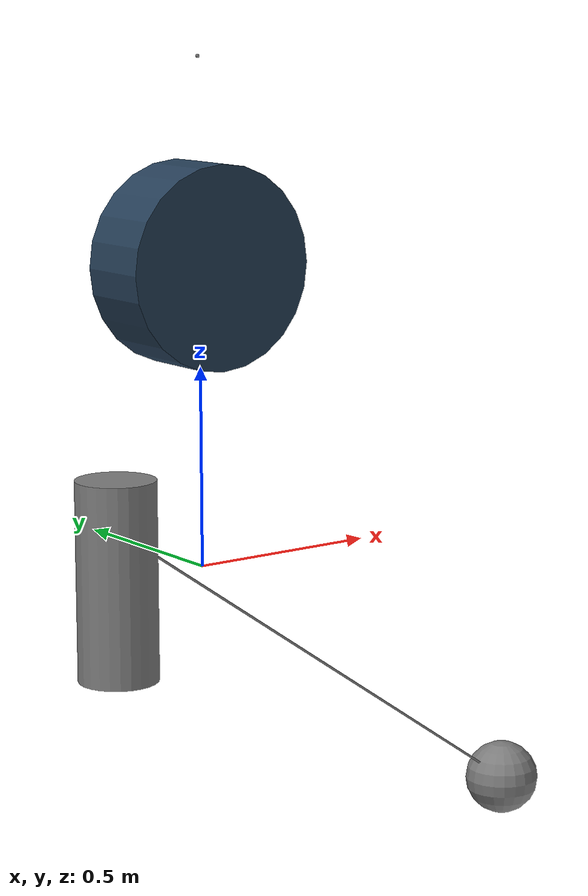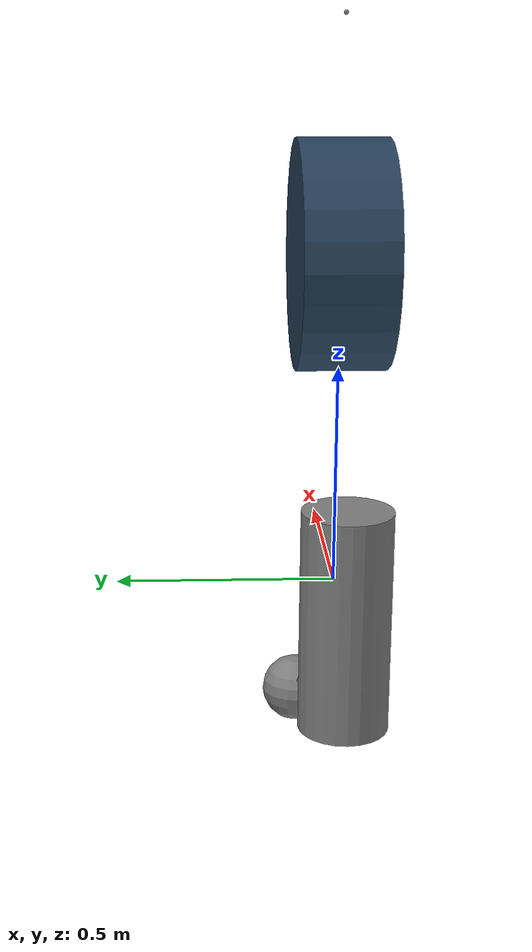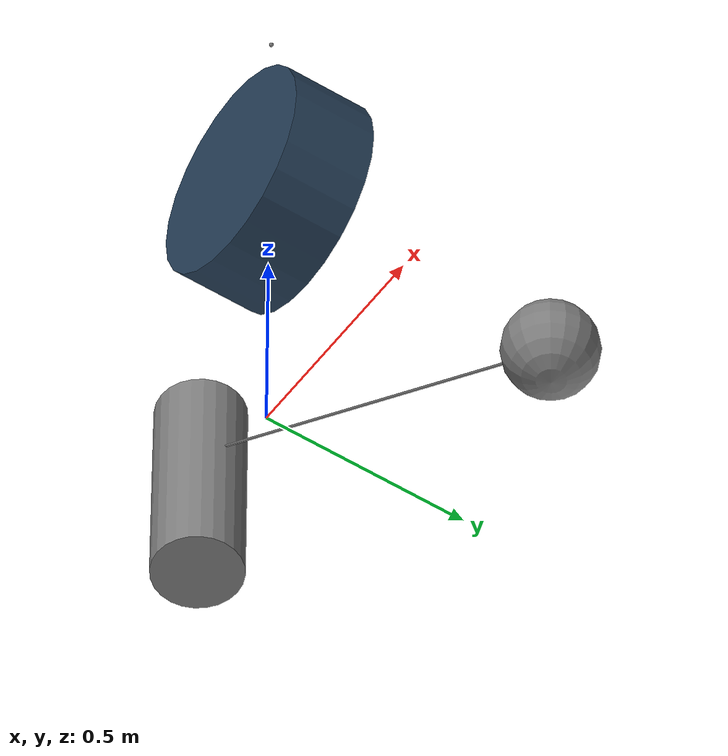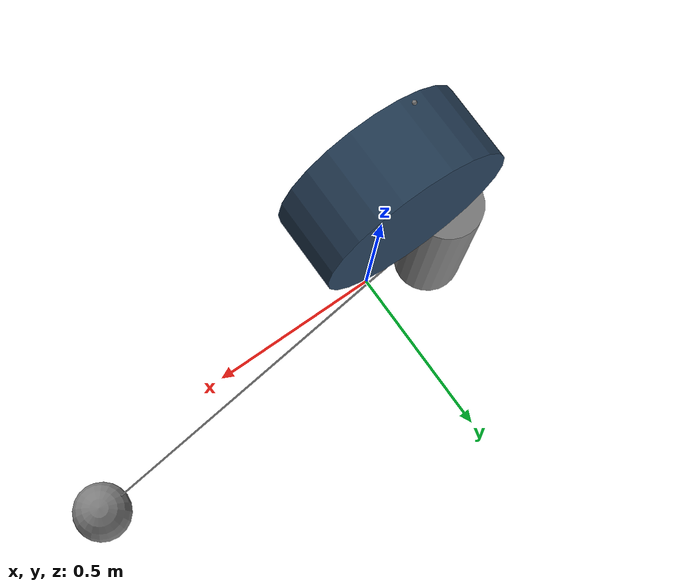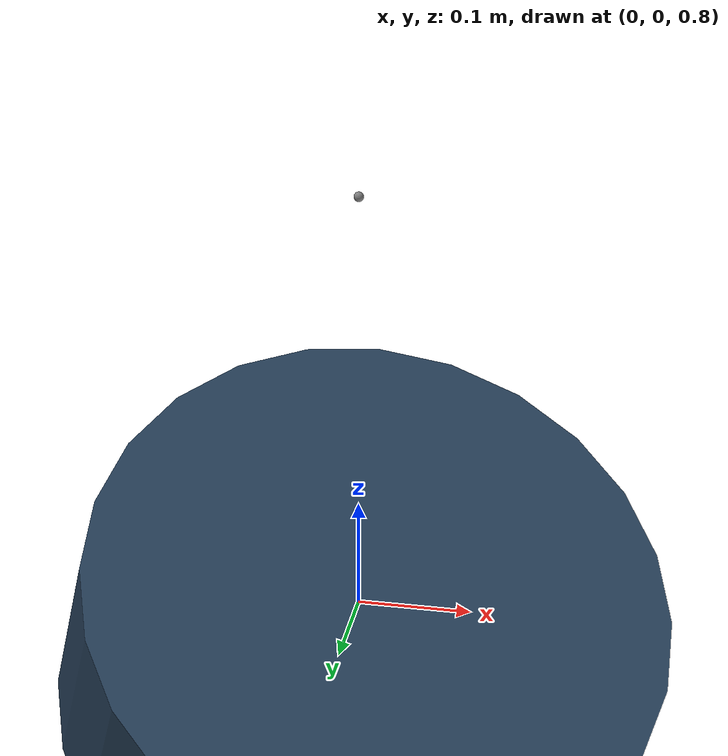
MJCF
<mujoco>
    <asset>
        <texture name="grid" type="2d" builtin="checker" rgb1=".1 .2 .3"
            rgb2=".2 .3 .4" width="100" height="100" mark="edge" markrgb=".4 .5 .6"/>
        <material name="grid" texture="grid" texrepeat="1 1" texuniform="true"
            reflectance=".2"/>
    </asset>

    <worldbody>
        <site name="topguide" pos = "0 0 1.25" />

        <body name="Pulley" pos="0 0 .75" >
            <joint type="hinge" axis="0 1 0"/>
            <geom name="Pulley" type= "cylinder" size=".25 .1" euler="90 0 0" material="grid"/>
        </body>

        <body name="slider_b" pos="1 0 -.75" >
            <joint type="slide" name="slider" axis="0 0 1"/>
            <geom type="sphere" size=".1" />
            <site name="anchor" />
        </body>

        <body name="weight" pos="-.25 0 0" >
            <joint type="free" />
            <geom type="cylinder" size=".1 .25" />
            <site name="weightsite" pos="0 0 .125" />
        </body>
    </worldbody>

    <tendon>
        <spatial name="belt" damping=".5" limited="true" range="3 3.05" >
            <site site="anchor" />
            <geom geom="Pulley" sidesite="topguide" />
            <site site="weightsite" />
        </spatial>
    </tendon>

    <actuator>
        <position name="Zpos" joint="slider" ctrlrange="-.5 .5" ctrllimited="true" kp="1000" />
        <velocity name="Zvel" joint="slider" ctrlrange="-.5 .5" ctrllimited="true" kv="100" />
    </actuator>
</mujoco>
